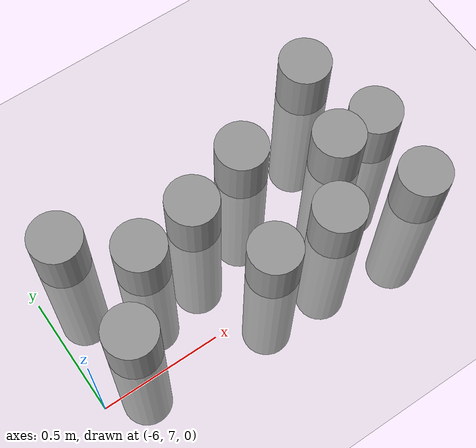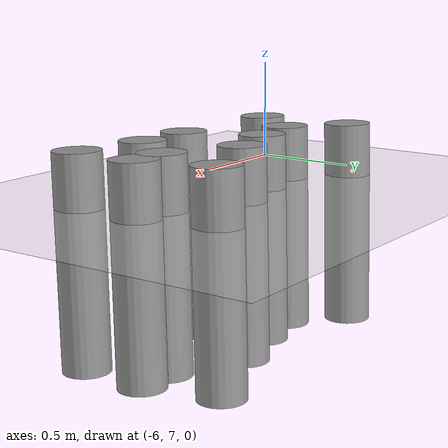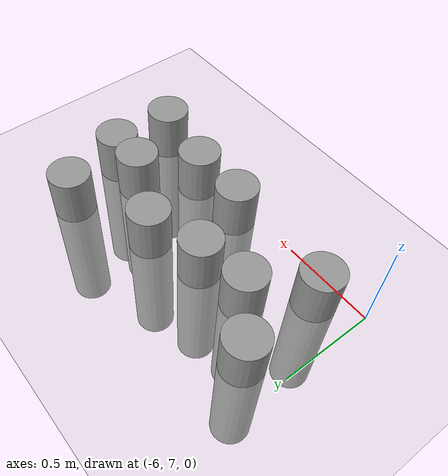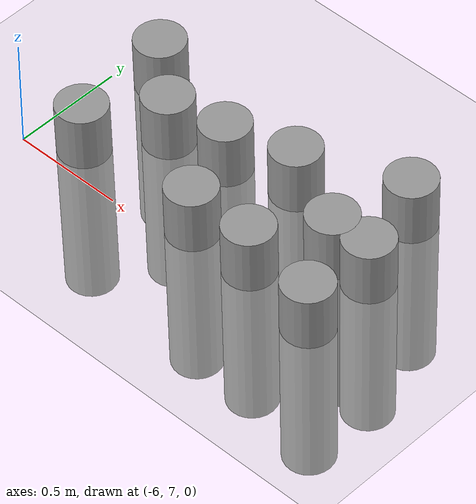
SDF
<sdf version="1.7">
 <world name="default">
  <model name="ground_plane">
   <static>1</static>
   <link name="link">
    <collision name="collision">
     <geometry><plane><normal>0 0 1</normal><size>100 100</size></plane></geometry>
     <surface>
      <contact><collide_bitmask>65535</collide_bitmask></contact>
      <friction><ode><mu>100</mu><mu2>50</mu2></ode></friction>
     </surface>
    </collision>
    <visual name="visual">
     <cast_shadows>0</cast_shadows>
     <geometry><plane><normal>0 0 1</normal><size>100 100</size></plane></geometry>
     <material>
      <script><uri>file://media/materials/scripts/gazebo.material</uri><name>Gazebo/Grey</name></script>
     </material>
    </visual>
   </link>
  </model>
  <model name="unit_cylinder_clone_3_clone">
   <link name="link">
    <inertial>
     <mass>0.0497635</mass>
     <inertia>
      <ixx>0.00430173</ixx>
      <ixy>0</ixy>
      <ixz>0</ixz>
      <iyy>0.00430173</iyy>
      <iyz>0</iyz>
      <izz>0.00030955</izz>
     </inertia>
    </inertial>
    <pose>0.001965 -0.009653 -0.499784 1.55252 -0 0</pose>
    <visual name="visual">
     <geometry><cylinder><radius>0.111539</radius><length>1</length></cylinder></geometry>
     <material>
      <script><name>Gazebo/Grey</name><uri>file://media/materials/scripts/gazebo.material</uri></script>
      <shader type="pixel"/>
     </material>
    </visual>
    <collision name="collision">
     <geometry><cylinder><radius>0.111539</radius><length>1</length></cylinder></geometry>
     <surface>
      <friction>
       <ode><mu>1</mu><mu2>1</mu2><fdir1>0 0 0</fdir1><slip1>0</slip1><slip2>0</slip2></ode>
       <torsional>
        <coefficient>1</coefficient>
        <patch_radius>0</patch_radius>
        <surface_radius>0</surface_radius>
        <use_patch_radius>1</use_patch_radius>
        <ode><slip>0</slip></ode>
       </torsional>
      </friction>
      <bounce><restitution_coefficient>0</restitution_coefficient><threshold>1e+06</threshold></bounce>
      <contact>
       <collide_without_contact>0</collide_without_contact>
       <collide_without_contact_bitmask>1</collide_without_contact_bitmask>
       <collide_bitmask>1</collide_bitmask>
       <ode>
        <soft_cfm>0</soft_cfm>
        <soft_erp>0.2</soft_erp>
        <kp>1e+13</kp>
        <kd>1</kd>
        <max_vel>0.01</max_vel>
        <min_depth>0</min_depth>
       </ode>
       <bullet>
        <split_impulse>1</split_impulse>
        <split_impulse_penetration_threshold>-0.01</split_impulse_penetration_threshold>
        <soft_cfm>0</soft_cfm>
        <soft_erp>0.2</soft_erp>
        <kp>1e+13</kp>
        <kd>1</kd>
       </bullet>
      </contact>
     </surface>
    </collision>
   </link>
   <static>1</static>
   <pose>-4.57955 7.21952 -0.259905 1.61465 -0 0</pose>
  </model>
  <model name="unit_cylinder_clone_3_clone_clone_1">
   <link name="link">
    <inertial>
     <mass>0.0497635</mass>
     <inertia>
      <ixx>0.00430173</ixx>
      <ixy>0</ixy>
      <ixz>0</ixz>
      <iyy>0.00430173</iyy>
      <iyz>0</iyz>
      <izz>0.00030955</izz>
     </inertia>
    </inertial>
    <pose>0.001965 -0.009653 -0.499784 1.55252 -0 0</pose>
    <visual name="visual">
     <geometry><cylinder><radius>0.111539</radius><length>1</length></cylinder></geometry>
     <material>
      <script><name>Gazebo/Grey</name><uri>file://media/materials/scripts/gazebo.material</uri></script>
      <shader type="pixel"/>
     </material>
    </visual>
    <collision name="collision">
     <geometry><cylinder><radius>0.111539</radius><length>1</length></cylinder></geometry>
     <surface>
      <friction>
       <ode><mu>1</mu><mu2>1</mu2><fdir1>0 0 0</fdir1><slip1>0</slip1><slip2>0</slip2></ode>
       <torsional>
        <coefficient>1</coefficient>
        <patch_radius>0</patch_radius>
        <surface_radius>0</surface_radius>
        <use_patch_radius>1</use_patch_radius>
        <ode><slip>0</slip></ode>
       </torsional>
      </friction>
      <bounce><restitution_coefficient>0</restitution_coefficient><threshold>1e+06</threshold></bounce>
      <contact>
       <collide_without_contact>0</collide_without_contact>
       <collide_without_contact_bitmask>1</collide_without_contact_bitmask>
       <collide_bitmask>1</collide_bitmask>
       <ode>
        <soft_cfm>0</soft_cfm>
        <soft_erp>0.2</soft_erp>
        <kp>1e+13</kp>
        <kd>1</kd>
        <max_vel>0.01</max_vel>
        <min_depth>0</min_depth>
       </ode>
       <bullet>
        <split_impulse>1</split_impulse>
        <split_impulse_penetration_threshold>-0.01</split_impulse_penetration_threshold>
        <soft_cfm>0</soft_cfm>
        <soft_erp>0.2</soft_erp>
        <kp>1e+13</kp>
        <kd>1</kd>
       </bullet>
      </contact>
     </surface>
    </collision>
   </link>
   <static>1</static>
   <pose>-4.66801 6.86691 -0.259905 1.61465 -0 0</pose>
  </model>
  <model name="unit_cylinder_clone_3_clone_clone_2">
   <link name="link">
    <inertial>
     <mass>0.0497635</mass>
     <inertia>
      <ixx>0.00430173</ixx>
      <ixy>0</ixy>
      <ixz>0</ixz>
      <iyy>0.00430173</iyy>
      <iyz>0</iyz>
      <izz>0.00030955</izz>
     </inertia>
    </inertial>
    <pose>0.001965 -0.009653 -0.499784 1.55252 -0 0</pose>
    <visual name="visual">
     <geometry><cylinder><radius>0.111539</radius><length>1</length></cylinder></geometry>
     <material>
      <script><name>Gazebo/Grey</name><uri>file://media/materials/scripts/gazebo.material</uri></script>
      <shader type="pixel"/>
     </material>
    </visual>
    <collision name="collision">
     <geometry><cylinder><radius>0.111539</radius><length>1</length></cylinder></geometry>
     <surface>
      <friction>
       <ode><mu>1</mu><mu2>1</mu2><fdir1>0 0 0</fdir1><slip1>0</slip1><slip2>0</slip2></ode>
       <torsional>
        <coefficient>1</coefficient>
        <patch_radius>0</patch_radius>
        <surface_radius>0</surface_radius>
        <use_patch_radius>1</use_patch_radius>
        <ode><slip>0</slip></ode>
       </torsional>
      </friction>
      <bounce><restitution_coefficient>0</restitution_coefficient><threshold>1e+06</threshold></bounce>
      <contact>
       <collide_without_contact>0</collide_without_contact>
       <collide_without_contact_bitmask>1</collide_without_contact_bitmask>
       <collide_bitmask>1</collide_bitmask>
       <ode>
        <soft_cfm>0</soft_cfm>
        <soft_erp>0.2</soft_erp>
        <kp>1e+13</kp>
        <kd>1</kd>
        <max_vel>0.01</max_vel>
        <min_depth>0</min_depth>
       </ode>
       <bullet>
        <split_impulse>1</split_impulse>
        <split_impulse_penetration_threshold>-0.01</split_impulse_penetration_threshold>
        <soft_cfm>0</soft_cfm>
        <soft_erp>0.2</soft_erp>
        <kp>1e+13</kp>
        <kd>1</kd>
       </bullet>
      </contact>
     </surface>
    </collision>
   </link>
   <static>1</static>
   <pose>-5.01861 7.03914 -0.259905 1.61465 -0 0</pose>
  </model>
  <model name="unit_cylinder_clone_3_clone_clone_5">
   <link name="link">
    <inertial>
     <mass>0.0497635</mass>
     <inertia>
      <ixx>0.00430173</ixx>
      <ixy>0</ixy>
      <ixz>0</ixz>
      <iyy>0.00430173</iyy>
      <iyz>0</iyz>
      <izz>0.00030955</izz>
     </inertia>
    </inertial>
    <pose>0.001965 -0.009653 -0.499784 1.55252 -0 0</pose>
    <visual name="visual">
     <geometry><cylinder><radius>0.111539</radius><length>1</length></cylinder></geometry>
     <material>
      <script><name>Gazebo/Grey</name><uri>file://media/materials/scripts/gazebo.material</uri></script>
      <shader type="pixel"/>
     </material>
    </visual>
    <collision name="collision">
     <geometry><cylinder><radius>0.111539</radius><length>1</length></cylinder></geometry>
     <surface>
      <friction>
       <ode><mu>1</mu><mu2>1</mu2><fdir1>0 0 0</fdir1><slip1>0</slip1><slip2>0</slip2></ode>
       <torsional>
        <coefficient>1</coefficient>
        <patch_radius>0</patch_radius>
        <surface_radius>0</surface_radius>
        <use_patch_radius>1</use_patch_radius>
        <ode><slip>0</slip></ode>
       </torsional>
      </friction>
      <bounce><restitution_coefficient>0</restitution_coefficient><threshold>1e+06</threshold></bounce>
      <contact>
       <collide_without_contact>0</collide_without_contact>
       <collide_without_contact_bitmask>1</collide_without_contact_bitmask>
       <collide_bitmask>1</collide_bitmask>
       <ode>
        <soft_cfm>0</soft_cfm>
        <soft_erp>0.2</soft_erp>
        <kp>1e+13</kp>
        <kd>1</kd>
        <max_vel>0.01</max_vel>
        <min_depth>0</min_depth>
       </ode>
       <bullet>
        <split_impulse>1</split_impulse>
        <split_impulse_penetration_threshold>-0.01</split_impulse_penetration_threshold>
        <soft_cfm>0</soft_cfm>
        <soft_erp>0.2</soft_erp>
        <kp>1e+13</kp>
        <kd>1</kd>
       </bullet>
      </contact>
     </surface>
    </collision>
   </link>
   <static>1</static>
   <pose>-5.31255 6.94999 -0.259905 1.61465 -0 0</pose>
  </model>
  <model name="unit_cylinder_clone_3_clone_clone_6">
   <link name="link">
    <inertial>
     <mass>0.0497635</mass>
     <inertia>
      <ixx>0.00430173</ixx>
      <ixy>0</ixy>
      <ixz>0</ixz>
      <iyy>0.00430173</iyy>
      <iyz>0</iyz>
      <izz>0.00030955</izz>
     </inertia>
    </inertial>
    <pose>0.001965 -0.009653 -0.499784 1.55252 -0 0</pose>
    <visual name="visual">
     <geometry><cylinder><radius>0.111539</radius><length>1</length></cylinder></geometry>
     <material>
      <script><name>Gazebo/Grey</name><uri>file://media/materials/scripts/gazebo.material</uri></script>
      <shader type="pixel"/>
     </material>
    </visual>
    <collision name="collision">
     <geometry><cylinder><radius>0.111539</radius><length>1</length></cylinder></geometry>
     <surface>
      <friction>
       <ode><mu>1</mu><mu2>1</mu2><fdir1>0 0 0</fdir1><slip1>0</slip1><slip2>0</slip2></ode>
       <torsional>
        <coefficient>1</coefficient>
        <patch_radius>0</patch_radius>
        <surface_radius>0</surface_radius>
        <use_patch_radius>1</use_patch_radius>
        <ode><slip>0</slip></ode>
       </torsional>
      </friction>
      <bounce><restitution_coefficient>0</restitution_coefficient><threshold>1e+06</threshold></bounce>
      <contact>
       <collide_without_contact>0</collide_without_contact>
       <collide_without_contact_bitmask>1</collide_without_contact_bitmask>
       <collide_bitmask>1</collide_bitmask>
       <ode>
        <soft_cfm>0</soft_cfm>
        <soft_erp>0.2</soft_erp>
        <kp>1e+13</kp>
        <kd>1</kd>
        <max_vel>0.01</max_vel>
        <min_depth>0</min_depth>
       </ode>
       <bullet>
        <split_impulse>1</split_impulse>
        <split_impulse_penetration_threshold>-0.01</split_impulse_penetration_threshold>
        <soft_cfm>0</soft_cfm>
        <soft_erp>0.2</soft_erp>
        <kp>1e+13</kp>
        <kd>1</kd>
       </bullet>
      </contact>
     </surface>
    </collision>
   </link>
   <static>1</static>
   <pose>-4.85951 6.60455 -0.259905 1.61465 -0 0</pose>
  </model>
  <model name="unit_cylinder_clone_3_clone_clone_7">
   <link name="link">
    <inertial>
     <mass>0.0497635</mass>
     <inertia>
      <ixx>0.00430173</ixx>
      <ixy>0</ixy>
      <ixz>0</ixz>
      <iyy>0.00430173</iyy>
      <iyz>0</iyz>
      <izz>0.00030955</izz>
     </inertia>
    </inertial>
    <pose>0.001965 -0.009653 -0.499784 1.55252 -0 0</pose>
    <visual name="visual">
     <geometry><cylinder><radius>0.111539</radius><length>1</length></cylinder></geometry>
     <material>
      <script><name>Gazebo/Grey</name><uri>file://media/materials/scripts/gazebo.material</uri></script>
      <shader type="pixel"/>
     </material>
    </visual>
    <collision name="collision">
     <geometry><cylinder><radius>0.111539</radius><length>1</length></cylinder></geometry>
     <surface>
      <friction>
       <ode><mu>1</mu><mu2>1</mu2><fdir1>0 0 0</fdir1><slip1>0</slip1><slip2>0</slip2></ode>
       <torsional>
        <coefficient>1</coefficient>
        <patch_radius>0</patch_radius>
        <surface_radius>0</surface_radius>
        <use_patch_radius>1</use_patch_radius>
        <ode><slip>0</slip></ode>
       </torsional>
      </friction>
      <bounce><restitution_coefficient>0</restitution_coefficient><threshold>1e+06</threshold></bounce>
      <contact>
       <collide_without_contact>0</collide_without_contact>
       <collide_without_contact_bitmask>1</collide_without_contact_bitmask>
       <collide_bitmask>1</collide_bitmask>
       <ode>
        <soft_cfm>0</soft_cfm>
        <soft_erp>0.2</soft_erp>
        <kp>1e+13</kp>
        <kd>1</kd>
        <max_vel>0.01</max_vel>
        <min_depth>0</min_depth>
       </ode>
       <bullet>
        <split_impulse>1</split_impulse>
        <split_impulse_penetration_threshold>-0.01</split_impulse_penetration_threshold>
        <soft_cfm>0</soft_cfm>
        <soft_erp>0.2</soft_erp>
        <kp>1e+13</kp>
        <kd>1</kd>
       </bullet>
      </contact>
     </surface>
    </collision>
   </link>
   <static>1</static>
   <pose>-5.58092 6.90475 -0.259905 1.61465 -0 0</pose>
  </model>
  <model name="unit_cylinder_clone_3_clone_clone_10">
   <link name="link">
    <inertial>
     <mass>0.0497635</mass>
     <inertia>
      <ixx>0.00430173</ixx>
      <ixy>0</ixy>
      <ixz>0</ixz>
      <iyy>0.00430173</iyy>
      <iyz>0</iyz>
      <izz>0.00030955</izz>
     </inertia>
    </inertial>
    <pose>0.001965 -0.009653 -0.499784 1.55252 -0 0</pose>
    <visual name="visual">
     <geometry><cylinder><radius>0.111539</radius><length>1</length></cylinder></geometry>
     <material>
      <script><name>Gazebo/Grey</name><uri>file://media/materials/scripts/gazebo.material</uri></script>
      <shader type="pixel"/>
     </material>
    </visual>
    <collision name="collision">
     <geometry><cylinder><radius>0.111539</radius><length>1</length></cylinder></geometry>
     <surface>
      <friction>
       <ode><mu>1</mu><mu2>1</mu2><fdir1>0 0 0</fdir1><slip1>0</slip1><slip2>0</slip2></ode>
       <torsional>
        <coefficient>1</coefficient>
        <patch_radius>0</patch_radius>
        <surface_radius>0</surface_radius>
        <use_patch_radius>1</use_patch_radius>
        <ode><slip>0</slip></ode>
       </torsional>
      </friction>
      <bounce><restitution_coefficient>0</restitution_coefficient><threshold>1e+06</threshold></bounce>
      <contact>
       <collide_without_contact>0</collide_without_contact>
       <collide_without_contact_bitmask>1</collide_without_contact_bitmask>
       <collide_bitmask>1</collide_bitmask>
       <ode>
        <soft_cfm>0</soft_cfm>
        <soft_erp>0.2</soft_erp>
        <kp>1e+13</kp>
        <kd>1</kd>
        <max_vel>0.01</max_vel>
        <min_depth>0</min_depth>
       </ode>
       <bullet>
        <split_impulse>1</split_impulse>
        <split_impulse_penetration_threshold>-0.01</split_impulse_penetration_threshold>
        <soft_cfm>0</soft_cfm>
        <soft_erp>0.2</soft_erp>
        <kp>1e+13</kp>
        <kd>1</kd>
       </bullet>
      </contact>
     </surface>
    </collision>
   </link>
   <static>1</static>
   <pose>-5.82641 7.11341 -0.259905 1.61465 -0 0</pose>
  </model>
  <model name="unit_cylinder_clone_3_clone_clone_11">
   <link name="link">
    <inertial>
     <mass>0.0497635</mass>
     <inertia>
      <ixx>0.00430173</ixx>
      <ixy>0</ixy>
      <ixz>0</ixz>
      <iyy>0.00430173</iyy>
      <iyz>0</iyz>
      <izz>0.00030955</izz>
     </inertia>
    </inertial>
    <pose>0.001965 -0.009653 -0.499784 1.55252 -0 0</pose>
    <visual name="visual">
     <geometry><cylinder><radius>0.111539</radius><length>1</length></cylinder></geometry>
     <material>
      <script><name>Gazebo/Grey</name><uri>file://media/materials/scripts/gazebo.material</uri></script>
      <shader type="pixel"/>
     </material>
    </visual>
    <collision name="collision">
     <geometry><cylinder><radius>0.111539</radius><length>1</length></cylinder></geometry>
     <surface>
      <friction>
       <ode><mu>1</mu><mu2>1</mu2><fdir1>0 0 0</fdir1><slip1>0</slip1><slip2>0</slip2></ode>
       <torsional>
        <coefficient>1</coefficient>
        <patch_radius>0</patch_radius>
        <surface_radius>0</surface_radius>
        <use_patch_radius>1</use_patch_radius>
        <ode><slip>0</slip></ode>
       </torsional>
      </friction>
      <bounce><restitution_coefficient>0</restitution_coefficient><threshold>1e+06</threshold></bounce>
      <contact>
       <collide_without_contact>0</collide_without_contact>
       <collide_without_contact_bitmask>1</collide_without_contact_bitmask>
       <collide_bitmask>1</collide_bitmask>
       <ode>
        <soft_cfm>0</soft_cfm>
        <soft_erp>0.2</soft_erp>
        <kp>1e+13</kp>
        <kd>1</kd>
        <max_vel>0.01</max_vel>
        <min_depth>0</min_depth>
       </ode>
       <bullet>
        <split_impulse>1</split_impulse>
        <split_impulse_penetration_threshold>-0.01</split_impulse_penetration_threshold>
        <soft_cfm>0</soft_cfm>
        <soft_erp>0.2</soft_erp>
        <kp>1e+13</kp>
        <kd>1</kd>
       </bullet>
      </contact>
     </surface>
    </collision>
   </link>
   <static>1</static>
   <pose>-5.16319 6.60487 -0.259905 1.61465 -0 0</pose>
  </model>
  <model name="unit_cylinder_clone_3_clone_clone_13">
   <link name="link">
    <inertial>
     <mass>0.0497635</mass>
     <inertia>
      <ixx>0.00430173</ixx>
      <ixy>0</ixy>
      <ixz>0</ixz>
      <iyy>0.00430173</iyy>
      <iyz>0</iyz>
      <izz>0.00030955</izz>
     </inertia>
    </inertial>
    <pose>0.001965 -0.009653 -0.499784 1.55252 -0 0</pose>
    <visual name="visual">
     <geometry><cylinder><radius>0.111539</radius><length>1</length></cylinder></geometry>
     <material>
      <script><name>Gazebo/Grey</name><uri>file://media/materials/scripts/gazebo.material</uri></script>
      <shader type="pixel"/>
     </material>
    </visual>
    <collision name="collision">
     <geometry><cylinder><radius>0.111539</radius><length>1</length></cylinder></geometry>
     <surface>
      <friction>
       <ode><mu>1</mu><mu2>1</mu2><fdir1>0 0 0</fdir1><slip1>0</slip1><slip2>0</slip2></ode>
       <torsional>
        <coefficient>1</coefficient>
        <patch_radius>0</patch_radius>
        <surface_radius>0</surface_radius>
        <use_patch_radius>1</use_patch_radius>
        <ode><slip>0</slip></ode>
       </torsional>
      </friction>
      <bounce><restitution_coefficient>0</restitution_coefficient><threshold>1e+06</threshold></bounce>
      <contact>
       <collide_without_contact>0</collide_without_contact>
       <collide_without_contact_bitmask>1</collide_without_contact_bitmask>
       <collide_bitmask>1</collide_bitmask>
       <ode>
        <soft_cfm>0</soft_cfm>
        <soft_erp>0.2</soft_erp>
        <kp>1e+13</kp>
        <kd>1</kd>
        <max_vel>0.01</max_vel>
        <min_depth>0</min_depth>
       </ode>
       <bullet>
        <split_impulse>1</split_impulse>
        <split_impulse_penetration_threshold>-0.01</split_impulse_penetration_threshold>
        <soft_cfm>0</soft_cfm>
        <soft_erp>0.2</soft_erp>
        <kp>1e+13</kp>
        <kd>1</kd>
       </bullet>
      </contact>
     </surface>
    </collision>
   </link>
   <static>1</static>
   <pose>-5.78976 6.63593 -0.259905 1.61465 -0 0</pose>
  </model>
  <model name="unit_cylinder_clone_3_clone_clone_1_clone">
   <link name="link">
    <inertial>
     <mass>0.0497635</mass>
     <inertia>
      <ixx>0.00430173</ixx>
      <ixy>0</ixy>
      <ixz>0</ixz>
      <iyy>0.00430173</iyy>
      <iyz>0</iyz>
      <izz>0.00030955</izz>
     </inertia>
    </inertial>
    <pose>0.001965 -0.009653 -0.499784 1.55252 -0 0</pose>
    <visual name="visual">
     <geometry><cylinder><radius>0.111539</radius><length>1</length></cylinder></geometry>
     <material>
      <script><name>Gazebo/Grey</name><uri>file://media/materials/scripts/gazebo.material</uri></script>
      <shader type="pixel"/>
     </material>
    </visual>
    <collision name="collision">
     <geometry><cylinder><radius>0.111539</radius><length>1</length></cylinder></geometry>
     <surface>
      <friction>
       <ode><mu>1</mu><mu2>1</mu2><fdir1>0 0 0</fdir1><slip1>0</slip1><slip2>0</slip2></ode>
       <torsional>
        <coefficient>1</coefficient>
        <patch_radius>0</patch_radius>
        <surface_radius>0</surface_radius>
        <use_patch_radius>1</use_patch_radius>
        <ode><slip>0</slip></ode>
       </torsional>
      </friction>
      <bounce><restitution_coefficient>0</restitution_coefficient><threshold>1e+06</threshold></bounce>
      <contact>
       <collide_without_contact>0</collide_without_contact>
       <collide_without_contact_bitmask>1</collide_without_contact_bitmask>
       <collide_bitmask>1</collide_bitmask>
       <ode>
        <soft_cfm>0</soft_cfm>
        <soft_erp>0.2</soft_erp>
        <kp>1e+13</kp>
        <kd>1</kd>
        <max_vel>0.01</max_vel>
        <min_depth>0</min_depth>
       </ode>
       <bullet>
        <split_impulse>1</split_impulse>
        <split_impulse_penetration_threshold>-0.01</split_impulse_penetration_threshold>
        <soft_cfm>0</soft_cfm>
        <soft_erp>0.2</soft_erp>
        <kp>1e+13</kp>
        <kd>1</kd>
       </bullet>
      </contact>
     </surface>
    </collision>
   </link>
   <static>1</static>
   <pose>-4.49317 6.54074 -0.259905 1.61465 -0 0</pose>
  </model>
  <model name="unit_cylinder_clone_3_clone_clone_1_clone_0">
   <link name="link">
    <inertial>
     <mass>0.0497635</mass>
     <inertia>
      <ixx>0.00430173</ixx>
      <ixy>0</ixy>
      <ixz>0</ixz>
      <iyy>0.00430173</iyy>
      <iyz>0</iyz>
      <izz>0.00030955</izz>
     </inertia>
    </inertial>
    <pose>0.001965 -0.009653 -0.499784 1.55252 -0 0</pose>
    <visual name="visual">
     <geometry><cylinder><radius>0.111539</radius><length>1</length></cylinder></geometry>
     <material>
      <script><name>Gazebo/Grey</name><uri>file://media/materials/scripts/gazebo.material</uri></script>
      <shader type="pixel"/>
     </material>
    </visual>
    <collision name="collision">
     <geometry><cylinder><radius>0.111539</radius><length>1</length></cylinder></geometry>
     <surface>
      <friction>
       <ode><mu>1</mu><mu2>1</mu2><fdir1>0 0 0</fdir1><slip1>0</slip1><slip2>0</slip2></ode>
       <torsional>
        <coefficient>1</coefficient>
        <patch_radius>0</patch_radius>
        <surface_radius>0</surface_radius>
        <use_patch_radius>1</use_patch_radius>
        <ode><slip>0</slip></ode>
       </torsional>
      </friction>
      <bounce><restitution_coefficient>0</restitution_coefficient><threshold>1e+06</threshold></bounce>
      <contact>
       <collide_without_contact>0</collide_without_contact>
       <collide_without_contact_bitmask>1</collide_without_contact_bitmask>
       <collide_bitmask>1</collide_bitmask>
       <ode>
        <soft_cfm>0</soft_cfm>
        <soft_erp>0.2</soft_erp>
        <kp>1e+13</kp>
        <kd>1</kd>
        <max_vel>0.01</max_vel>
        <min_depth>0</min_depth>
       </ode>
       <bullet>
        <split_impulse>1</split_impulse>
        <split_impulse_penetration_threshold>-0.01</split_impulse_penetration_threshold>
        <soft_cfm>0</soft_cfm>
        <soft_erp>0.2</soft_erp>
        <kp>1e+13</kp>
        <kd>1</kd>
       </bullet>
      </contact>
     </surface>
    </collision>
   </link>
   <static>1</static>
   <pose>-4.48195 6.86965 -0.259905 1.61465 -0 0</pose>
  </model>
 </world>
</sdf>
